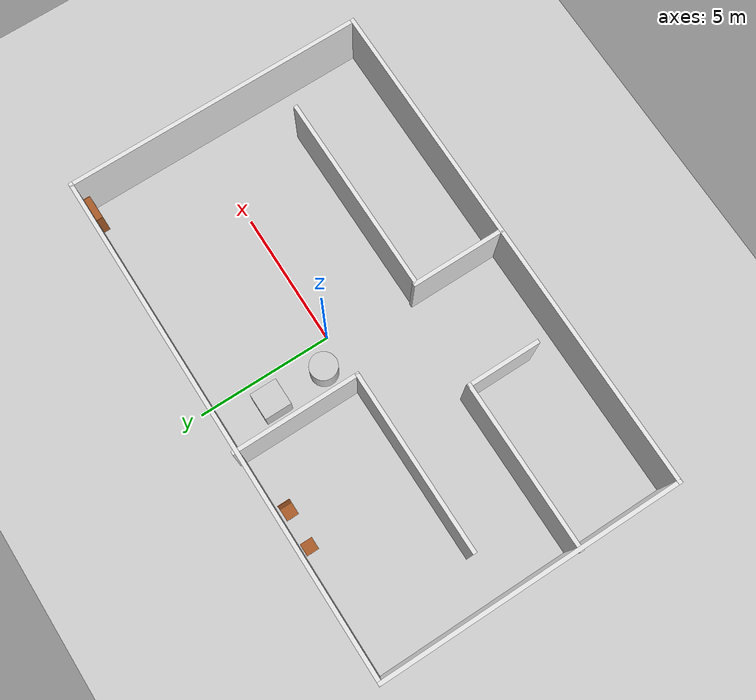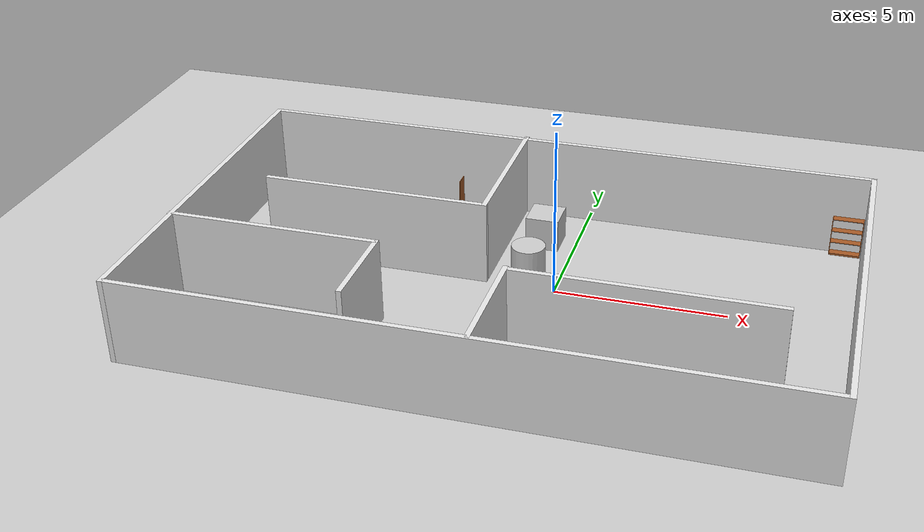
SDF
<sdf version="1.9">
 <world name="default">
  <light name="sun" type="directional">
   <pose>0 0 10 0 -0 0</pose>
   <diffuse>0.8 0.8 0.8 1</diffuse>
   <specular>0.2 0.2 0.2 1</specular>
   <attenuation>
    <range>1000</range>
    <constant>0.9</constant>
    <linear>0.01</linear>
    <quadratic>0.001</quadratic>
   </attenuation>
   <direction>-0.5 0.1 -0.9</direction>
   <spot><inner_angle>0</inner_angle><outer_angle>0</outer_angle><falloff>0</falloff></spot>
  </light>
  <model name="ground_plane">
   <static>1</static>
   <link name="link">
    <collision name="collision">
     <geometry><plane><normal>0 0 1</normal><size>100 100</size></plane></geometry>
     <surface><friction><ode><mu>100</mu><mu2>50</mu2></ode></friction></surface>
    </collision>
    <visual name="visual">
     <cast_shadows>0</cast_shadows>
     <geometry><plane><normal>0 0 1</normal><size>100 100</size></plane></geometry>
     <material>
      <ambient>0.7 0.7 0.7 1</ambient>
      <diffuse>0.8 0.8 0.8 1</diffuse>
      <specular>0.1 0.1 0.1 1</specular>
      <emissive>0 0 0 0</emissive>
     </material>
    </visual>
   </link>
  </model>
  <gravity>0 0 -9.8</gravity>
  <magnetic_field>6e-06 2.3e-05 -4.2e-05</magnetic_field>
  <atmosphere type="adiabatic"/>
  <physics type="ode">
   <max_step_size>0.001</max_step_size>
   <real_time_factor>1</real_time_factor>
   <real_time_update_rate>1000</real_time_update_rate>
  </physics>
  <scene><ambient>0.4 0.4 0.4 1</ambient><background>0.7 0.7 0.7 1</background><shadows>1</shadows></scene>
  <audio><device>default</device></audio>
  <spherical_coordinates>
   <surface_model>EARTH_WGS84</surface_model>
   <latitude_deg>0</latitude_deg>
   <longitude_deg>0</longitude_deg>
   <elevation>0</elevation>
   <heading_deg>0</heading_deg>
  </spherical_coordinates>
  <model name="room">
   <pose>-0.972666 -0.903877 0 0 -0 0</pose>
   <link name="Wall_66">
    <collision name="Wall_66_Collision">
     <geometry><box><size>19 0.15 2.5</size></box></geometry>
     <pose>0 0 1.25 0 -0 0</pose>
    </collision>
    <visual name="Wall_66_Visual">
     <pose>0 0 1.25 0 -0 0</pose>
     <geometry><box><size>19 0.15 2.5</size></box></geometry>
     <material>
      <ambient>0.8 0.8 0.8 1</ambient>
      <diffuse>0.9 0.9 0.9 1</diffuse>
      <specular>0.2 0.2 0.2 1</specular>
     </material>
     <meta><layer>0</layer></meta>
    </visual>
    <pose>0.013921 5.50955 0 0 -0 0</pose>
   </link>
   <link name="Wall_67">
    <collision name="Wall_67_Collision">
     <geometry><box><size>11.25 0.15 2.5</size></box></geometry>
     <pose>0 0 1.25 0 -0 0</pose>
    </collision>
    <visual name="Wall_67_Visual">
     <pose>0 0 1.25 0 -0 0</pose>
     <geometry><box><size>11.25 0.15 2.5</size></box></geometry>
     <material>
      <ambient>0.8 0.8 0.8 1</ambient>
      <diffuse>0.9 0.9 0.9 1</diffuse>
      <specular>0.2 0.2 0.2 1</specular>
     </material>
     <meta><layer>0</layer></meta>
    </visual>
    <pose>9.43892 -0.040455 0 0 -0 -1.5708</pose>
   </link>
   <link name="Wall_68">
    <collision name="Wall_68_Collision">
     <geometry><box><size>19 0.15 2.5</size></box></geometry>
     <pose>0 0 1.25 0 -0 0</pose>
    </collision>
    <visual name="Wall_68_Visual">
     <pose>0 0 1.25 0 -0 0</pose>
     <geometry><box><size>19 0.15 2.5</size></box></geometry>
     <material>
      <ambient>0.8 0.8 0.8 1</ambient>
      <diffuse>0.9 0.9 0.9 1</diffuse>
      <specular>0.2 0.2 0.2 1</specular>
     </material>
     <meta><layer>0</layer></meta>
    </visual>
    <pose>0.013921 -5.59046 0 0 -0 3.14159</pose>
   </link>
   <link name="Wall_69">
    <collision name="Wall_69_Collision">
     <geometry><box><size>11.25 0.15 2.5</size></box></geometry>
     <pose>0 0 1.25 0 -0 0</pose>
    </collision>
    <visual name="Wall_69_Visual">
     <pose>0 0 1.25 0 -0 0</pose>
     <geometry><box><size>11.25 0.15 2.5</size></box></geometry>
     <material>
      <ambient>0.8 0.8 0.8 1</ambient>
      <diffuse>0.9 0.9 0.9 1</diffuse>
      <specular>0.2 0.2 0.2 1</specular>
     </material>
     <meta><layer>0</layer></meta>
    </visual>
    <pose>-9.41108 -0.040455 0 0 -0 1.5708</pose>
   </link>
   <link name="Wall_71">
    <collision name="Wall_71_Collision">
     <geometry><box><size>4.75 0.15 2.5</size></box></geometry>
     <pose>0 0 1.25 0 -0 0</pose>
    </collision>
    <visual name="Wall_71_Visual">
     <pose>0 0 1.25 0 -0 0</pose>
     <geometry><box><size>4.75 0.15 2.5</size></box></geometry>
     <material>
      <ambient>0.8 0.8 0.8 1</ambient>
      <diffuse>0.9 0.9 0.9 1</diffuse>
      <specular>0.2 0.2 0.2 1</specular>
     </material>
     <meta><layer>0</layer></meta>
    </visual>
    <pose>-1.11769 3.29046 0 0 -0 -1.5708</pose>
   </link>
   <link name="Wall_72">
    <collision name="Wall_72_Collision">
     <geometry><box><size>6.75 0.15 2.5</size></box></geometry>
     <pose>0 0 1.25 0 -0 0</pose>
    </collision>
    <visual name="Wall_72_Visual">
     <pose>0 0 1.25 0 -0 0</pose>
     <geometry><box><size>6.75 0.15 2.5</size></box></geometry>
     <material>
      <ambient>0.8 0.8 0.8 1</ambient>
      <diffuse>0.9 0.9 0.9 1</diffuse>
      <specular>0.2 0.2 0.2 1</specular>
     </material>
     <meta><layer>0</layer></meta>
    </visual>
    <pose>-4.41769 0.990456 0 0 -0 3.14159</pose>
   </link>
   <link name="Wall_79">
    <collision name="Wall_79_Collision">
     <geometry><box><size>3.47722 0.15 2.5</size></box></geometry>
     <pose>0 0 1.25 0 -0 0</pose>
    </collision>
    <visual name="Wall_79_Visual">
     <pose>0 0 1.25 0 -0 0</pose>
     <geometry><box><size>3.47722 0.15 2.5</size></box></geometry>
     <material>
      <ambient>0.8 0.8 0.8 1</ambient>
      <diffuse>0.9 0.9 0.9 1</diffuse>
      <specular>0.2 0.2 0.2 1</specular>
     </material>
     <meta><layer>0</layer></meta>
    </visual>
    <pose>0.391784 -3.86799 0 0 -0 1.5708</pose>
   </link>
   <link name="Wall_80">
    <collision name="Wall_80_Collision">
     <geometry><box><size>7.5 0.15 2.5</size></box></geometry>
     <pose>0 0 1.25 0 -0 0</pose>
    </collision>
    <visual name="Wall_80_Visual">
     <pose>0 0 1.25 0 -0 0</pose>
     <geometry><box><size>7.5 0.15 2.5</size></box></geometry>
     <material>
      <ambient>0.8 0.8 0.8 1</ambient>
      <diffuse>0.9 0.9 0.9 1</diffuse>
      <specular>0.2 0.2 0.2 1</specular>
     </material>
     <meta><layer>0</layer></meta>
    </visual>
    <pose>4.06678 -2.24484 0 0 -0 0</pose>
   </link>
   <link name="Wall_85">
    <collision name="Wall_85_Collision">
     <geometry><box><size>6.25 0.15 2.5</size></box></geometry>
     <pose>0 0 1.25 0 -0 0</pose>
    </collision>
    <visual name="Wall_85_Visual">
     <pose>0 0 1.25 0 -0 0</pose>
     <geometry><box><size>6.25 0.15 2.5</size></box></geometry>
     <material>
      <ambient>0.8 0.8 0.8 1</ambient>
      <diffuse>0.9 0.9 0.9 1</diffuse>
      <specular>0.2 0.2 0.2 1</specular>
     </material>
     <meta><layer>0</layer></meta>
    </visual>
    <pose>-6.38892 -1.80969 0 0 -0 0</pose>
   </link>
   <link name="Wall_86">
    <collision name="Wall_86_Collision">
     <geometry><box><size>2.75 0.15 2.5</size></box></geometry>
     <pose>0 0 1.25 0 -0 0</pose>
    </collision>
    <visual name="Wall_86_Visual">
     <pose>0 0 1.25 0 -0 0</pose>
     <geometry><box><size>2.75 0.15 2.5</size></box></geometry>
     <material>
      <ambient>0.8 0.8 0.8 1</ambient>
      <diffuse>0.9 0.9 0.9 1</diffuse>
      <specular>0.2 0.2 0.2 1</specular>
     </material>
     <meta><layer>0</layer></meta>
    </visual>
    <pose>-3.33892 -3.10969 0 0 -0 -1.5708</pose>
   </link>
   <static>1</static>
  </model>
  <model name="bookshelf">
   <static>1</static>
   <link name="link">
    <inertial><mass>1</mass></inertial>
    <collision name="back">
     <pose>0 0.005 0.6 0 -0 0</pose>
     <geometry><box><size>0.9 0.01 1.2</size></box></geometry>
    </collision>
    <visual name="visual1">
     <pose>0 0.005 0.6 0 -0 0</pose>
     <geometry><box><size>0.9 0.01 1.2</size></box></geometry>
     <material>
      <ambient>0.55 0.27 0.07 1</ambient>
      <diffuse>0.65 0.35 0.15 1</diffuse>
      <specular>0.1 0.1 0.1 1</specular>
     </material>
    </visual>
    <collision name="left_side">
     <pose>0.45 -0.195 0.6 0 -0 0</pose>
     <geometry><box><size>0.02 0.4 1.2</size></box></geometry>
    </collision>
    <visual name="visual2">
     <pose>0.45 -0.195 0.6 0 -0 0</pose>
     <geometry><box><size>0.02 0.4 1.2</size></box></geometry>
     <material>
      <ambient>0.55 0.27 0.07 1</ambient>
      <diffuse>0.65 0.35 0.15 1</diffuse>
      <specular>0.1 0.1 0.1 1</specular>
     </material>
    </visual>
    <collision name="right_side">
     <pose>-0.45 -0.195 0.6 0 -0 0</pose>
     <geometry><box><size>0.02 0.4 1.2</size></box></geometry>
    </collision>
    <visual name="visual3">
     <pose>-0.45 -0.195 0.6 0 -0 0</pose>
     <geometry><box><size>0.02 0.4 1.2</size></box></geometry>
     <material>
      <ambient>0.55 0.27 0.07 1</ambient>
      <diffuse>0.65 0.35 0.15 1</diffuse>
      <specular>0.1 0.1 0.1 1</specular>
     </material>
    </visual>
    <collision name="bottom">
     <pose>0 -0.195 0.03 0 -0 0</pose>
     <geometry><box><size>0.88 0.4 0.06</size></box></geometry>
    </collision>
    <visual name="visual4">
     <pose>0 -0.195 0.03 0 -0 0</pose>
     <geometry><box><size>0.88 0.4 0.06</size></box></geometry>
     <material>
      <ambient>0.55 0.27 0.07 1</ambient>
      <diffuse>0.65 0.35 0.15 1</diffuse>
      <specular>0.1 0.1 0.1 1</specular>
     </material>
    </visual>
    <collision name="top">
     <pose>0 -0.195 1.19 0 -0 0</pose>
     <geometry><box><size>0.88 0.4 0.02</size></box></geometry>
    </collision>
    <visual name="visual5">
     <pose>0 -0.195 1.19 0 -0 0</pose>
     <geometry><box><size>0.88 0.4 0.02</size></box></geometry>
     <material>
      <ambient>0.55 0.27 0.07 1</ambient>
      <diffuse>0.65 0.35 0.15 1</diffuse>
      <specular>0.1 0.1 0.1 1</specular>
     </material>
    </visual>
    <collision name="low_shelf">
     <pose>0 -0.195 0.43 0 -0 0</pose>
     <geometry><box><size>0.88 0.4 0.02</size></box></geometry>
    </collision>
    <visual name="visual6">
     <pose>0 -0.195 0.43 0 -0 0</pose>
     <geometry><box><size>0.88 0.4 0.02</size></box></geometry>
     <material>
      <ambient>0.55 0.27 0.07 1</ambient>
      <diffuse>0.65 0.35 0.15 1</diffuse>
      <specular>0.1 0.1 0.1 1</specular>
     </material>
    </visual>
    <collision name="high_shelf">
     <pose>0 -0.195 0.8 0 -0 0</pose>
     <geometry><box><size>0.88 0.4 0.02</size></box></geometry>
    </collision>
    <visual name="visual7">
     <pose>0 -0.195 0.8 0 -0 0</pose>
     <geometry><box><size>0.88 0.4 0.02</size></box></geometry>
     <material>
      <ambient>0.55 0.27 0.07 1</ambient>
      <diffuse>0.65 0.35 0.15 1</diffuse>
      <specular>0.1 0.1 0.1 1</specular>
     </material>
    </visual>
   </link>
   <pose>7.91236 4.68506 0 0 -0 0</pose>
  </model>
  <model name="cabinet">
   <static>1</static>
   <link name="cabinet_bottom_plate">
    <inertial>
     <pose>0 0 -1 0 -0 0</pose>
     <inertia><ixx>2.05</ixx><ixy>0</ixy><ixz>0</ixz><iyy>2.05</iyy><iyz>0</iyz><izz>2.05</izz></inertia>
     <mass>25</mass>
    </inertial>
    <collision name="cabinet_bottom_plate_geom">
     <pose>0 0 0.01 0 -0 0</pose>
     <geometry><box><size>0.45 0.45 0.02</size></box></geometry>
    </collision>
    <visual name="cabinet_bottom_plate_geom_visual">
     <pose>0 0 0.01 0 -0 0</pose>
     <geometry><box><size>0.45 0.45 0.02</size></box></geometry>
     <material>
      <ambient>0.55 0.27 0.07 1</ambient>
      <diffuse>0.65 0.35 0.15 1</diffuse>
      <specular>0.1 0.1 0.1 1</specular>
     </material>
    </visual>
    <collision name="cabinet_bottom_plate_geom_cabinet_back_plate">
     <pose>0.235 0 0.51 0 -0 0</pose>
     <geometry><box><size>0.02 0.45 1.02</size></box></geometry>
    </collision>
    <visual name="cabinet_bottom_plate_geom_cabinet_back_plate_visual">
     <pose>0.235 0 0.51 0 -0 0</pose>
     <geometry><box><size>0.02 0.45 1.02</size></box></geometry>
     <material>
      <ambient>0.55 0.27 0.07 1</ambient>
      <diffuse>0.65 0.35 0.15 1</diffuse>
      <specular>0.1 0.1 0.1 1</specular>
     </material>
    </visual>
   </link>
   <pose>-4.31975 4.20897 0 0 -0 0</pose>
  </model>
  <model name="cabinet_0">
   <static>1</static>
   <link name="cabinet_bottom_plate">
    <inertial>
     <pose>0 0 -1 0 -0 0</pose>
     <inertia><ixx>2.05</ixx><ixy>0</ixy><ixz>0</ixz><iyy>2.05</iyy><iyz>0</iyz><izz>2.05</izz></inertia>
     <mass>25</mass>
    </inertial>
    <visual name="cabinet_bottom_plate_geom_visual">
     <pose>0 0 0.01 0 -0 0</pose>
     <geometry><box><size>0.45 0.45 0.02</size></box></geometry>
     <material>
      <ambient>0.55 0.27 0.07 1</ambient>
      <diffuse>0.65 0.35 0.15 1</diffuse>
      <specular>0.1 0.1 0.1 1</specular>
     </material>
    </visual>
   </link>
   <pose>-5.63889 4.25649 0 0 -0 0</pose>
  </model>
  <model name="unit_cylinder">
   <pose>-0.961046 0.717231 0.5 0 -0 0</pose>
   <link name="link">
    <inertial>
     <mass>1</mass>
     <inertia><ixx>0.145833</ixx><ixy>0</ixy><ixz>0</ixz><iyy>0.145833</iyy><iyz>0</iyz><izz>0.125</izz></inertia>
    </inertial>
    <collision name="collision">
     <geometry><cylinder><radius>0.5</radius><length>1</length></cylinder></geometry>
    </collision>
    <visual name="visual">
     <geometry><cylinder><radius>0.5</radius><length>1</length></cylinder></geometry>
     <material>
      <ambient>0.7 0.7 0.7 1</ambient>
      <diffuse>0.8 0.8 0.8 1</diffuse>
      <specular>0.1 0.1 0.1 1</specular>
     </material>
    </visual>
   </link>
  </model>
  <model name="unit_box">
   <pose>-0.958121 2.77839 0.5 0 -0 0</pose>
   <link name="link">
    <inertial>
     <mass>1</mass>
     <inertia>
      <ixx>0.166667</ixx>
      <ixy>0</ixy>
      <ixz>0</ixz>
      <iyy>0.166667</iyy>
      <iyz>0</iyz>
      <izz>0.166667</izz>
     </inertia>
    </inertial>
    <collision name="collision"><geometry><box><size>1 1 1</size></box></geometry></collision>
    <visual name="visual">
     <geometry><box><size>1 1 1</size></box></geometry>
     <material>
      <ambient>0.7 0.7 0.7 1</ambient>
      <diffuse>0.8 0.8 0.8 1</diffuse>
      <specular>0.1 0.1 0.1 1</specular>
     </material>
    </visual>
   </link>
  </model>
 </world>
</sdf>
